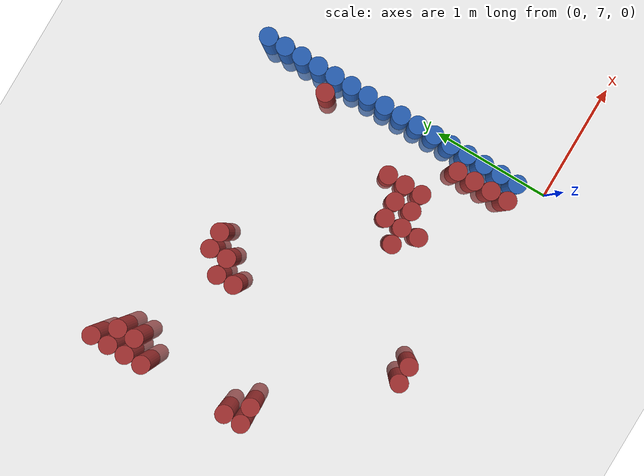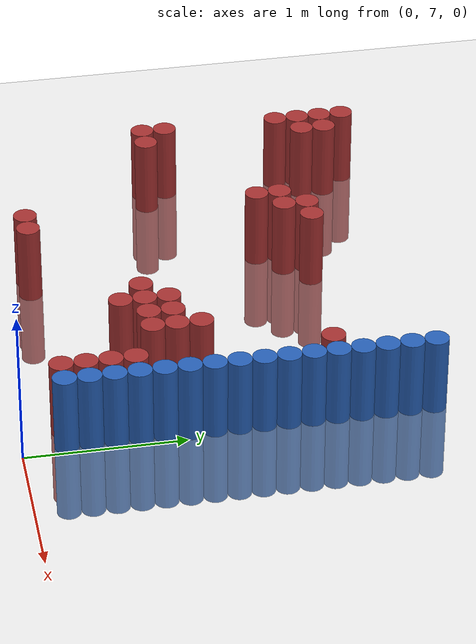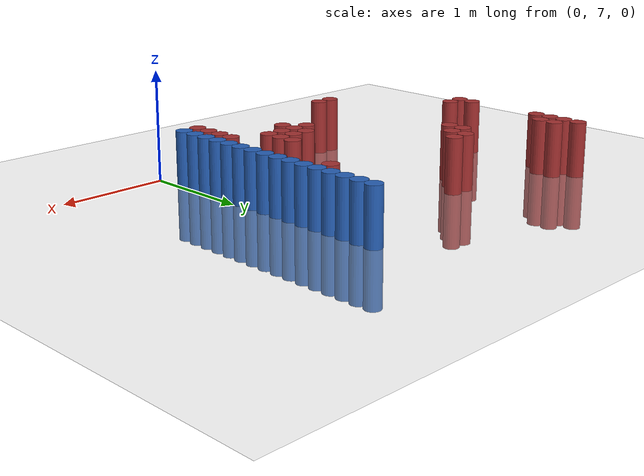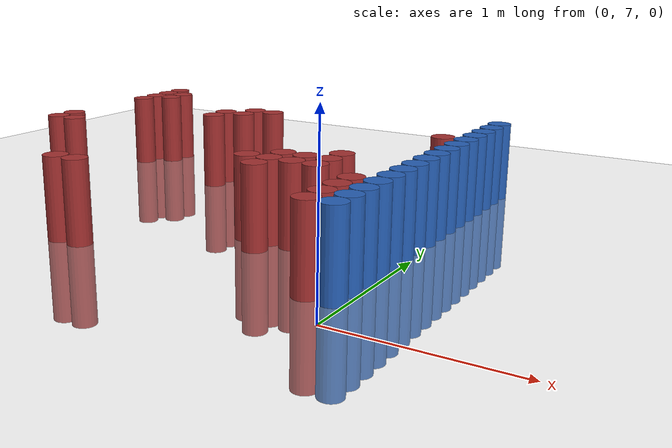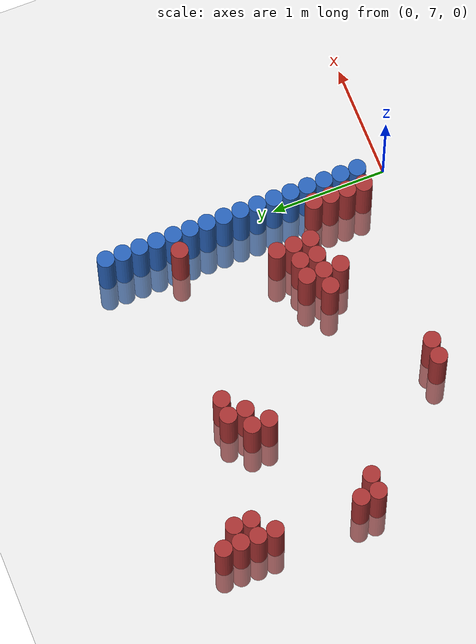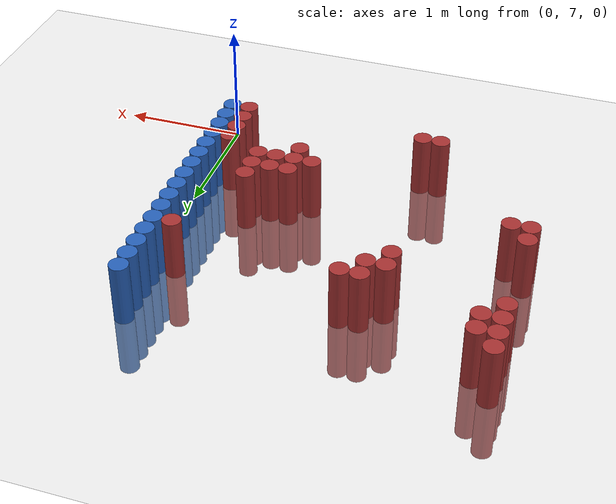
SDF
<sdf version="1.6">
 <world name="default">
  <model name="ground_plane">
   <static>1</static>
   <link name="link">
    <collision name="collision">
     <geometry><plane><normal>0 0 1</normal><size>100 100</size></plane></geometry>
     <surface><friction><ode><mu>100</mu><mu2>50</mu2></ode></friction></surface>
    </collision>
    <visual name="visual">
     <cast_shadows>0</cast_shadows>
     <geometry><plane><normal>0 0 1</normal><size>100 100</size></plane></geometry>
     <material>
      <script><uri>file://media/materials/scripts/gazebo.material</uri><name>Gazebo/Grey</name></script>
     </material>
    </visual>
   </link>
  </model>
  <model name="unit_cylinder_155">
   <static>1</static>
   <pose>-2.775000 8.175000 0.000000 0.000000 0.000000 0.000000</pose>
   <link name="link">
    <inertial>
     <mass>1</mass>
     <inertia><ixx>0.145833</ixx><ixy>0</ixy><ixz>0</ixz><iyy>0.145833</iyy><iyz>0</iyz><izz>0.125</izz></inertia>
    </inertial>
    <collision name="collision">
     <geometry><cylinder><radius>0.075000</radius><length>1</length></cylinder></geometry>
    </collision>
    <visual name="visual">
     <geometry><cylinder><radius>0.075000</radius><length>1</length></cylinder></geometry>
     <material>
      <ambient>0.648000 0.192000 0.192000 1</ambient>
      <diffuse>0.648000 0.192000 0.192000 1</diffuse>
     </material>
     <material>
      <script><name>Gazebo/Grey</name><uri>file://media/materials/scripts/gazebo.material</uri></script>
     </material>
    </visual>
   </link>
  </model>
  <model name="unit_cylinder_156">
   <static>1</static>
   <pose>-2.775000 8.325000 0.000000 0.000000 0.000000 0.000000</pose>
   <link name="link">
    <inertial>
     <mass>1</mass>
     <inertia><ixx>0.145833</ixx><ixy>0</ixy><ixz>0</ixz><iyy>0.145833</iyy><iyz>0</iyz><izz>0.125</izz></inertia>
    </inertial>
    <collision name="collision">
     <geometry><cylinder><radius>0.075000</radius><length>1</length></cylinder></geometry>
    </collision>
    <visual name="visual">
     <geometry><cylinder><radius>0.075000</radius><length>1</length></cylinder></geometry>
     <material>
      <ambient>0.648000 0.192000 0.192000 1</ambient>
      <diffuse>0.648000 0.192000 0.192000 1</diffuse>
     </material>
     <material>
      <script><name>Gazebo/Grey</name><uri>file://media/materials/scripts/gazebo.material</uri></script>
     </material>
    </visual>
   </link>
  </model>
  <model name="unit_cylinder_157">
   <static>1</static>
   <pose>-2.775000 9.075000 0.000000 0.000000 0.000000 0.000000</pose>
   <link name="link">
    <inertial>
     <mass>1</mass>
     <inertia><ixx>0.145833</ixx><ixy>0</ixy><ixz>0</ixz><iyy>0.145833</iyy><iyz>0</iyz><izz>0.125</izz></inertia>
    </inertial>
    <collision name="collision">
     <geometry><cylinder><radius>0.075000</radius><length>1</length></cylinder></geometry>
    </collision>
    <visual name="visual">
     <geometry><cylinder><radius>0.075000</radius><length>1</length></cylinder></geometry>
     <material>
      <ambient>0.648000 0.192000 0.192000 1</ambient>
      <diffuse>0.648000 0.192000 0.192000 1</diffuse>
     </material>
     <material>
      <script><name>Gazebo/Grey</name><uri>file://media/materials/scripts/gazebo.material</uri></script>
     </material>
    </visual>
   </link>
  </model>
  <model name="unit_cylinder_158">
   <static>1</static>
   <pose>-2.775000 9.225000 0.000000 0.000000 0.000000 0.000000</pose>
   <link name="link">
    <inertial>
     <mass>1</mass>
     <inertia><ixx>0.145833</ixx><ixy>0</ixy><ixz>0</ixz><iyy>0.145833</iyy><iyz>0</iyz><izz>0.125</izz></inertia>
    </inertial>
    <collision name="collision">
     <geometry><cylinder><radius>0.075000</radius><length>1</length></cylinder></geometry>
    </collision>
    <visual name="visual">
     <geometry><cylinder><radius>0.075000</radius><length>1</length></cylinder></geometry>
     <material>
      <ambient>0.648000 0.192000 0.192000 1</ambient>
      <diffuse>0.648000 0.192000 0.192000 1</diffuse>
     </material>
     <material>
      <script><name>Gazebo/Grey</name><uri>file://media/materials/scripts/gazebo.material</uri></script>
     </material>
    </visual>
   </link>
  </model>
  <model name="unit_cylinder_159">
   <static>1</static>
   <pose>-2.775000 9.375000 0.000000 0.000000 0.000000 0.000000</pose>
   <link name="link">
    <inertial>
     <mass>1</mass>
     <inertia><ixx>0.145833</ixx><ixy>0</ixy><ixz>0</ixz><iyy>0.145833</iyy><iyz>0</iyz><izz>0.125</izz></inertia>
    </inertial>
    <collision name="collision">
     <geometry><cylinder><radius>0.075000</radius><length>1</length></cylinder></geometry>
    </collision>
    <visual name="visual">
     <geometry><cylinder><radius>0.075000</radius><length>1</length></cylinder></geometry>
     <material>
      <ambient>0.648000 0.192000 0.192000 1</ambient>
      <diffuse>0.648000 0.192000 0.192000 1</diffuse>
     </material>
     <material>
      <script><name>Gazebo/Grey</name><uri>file://media/materials/scripts/gazebo.material</uri></script>
     </material>
    </visual>
   </link>
  </model>
  <model name="unit_cylinder_160">
   <static>1</static>
   <pose>-2.775000 9.525000 0.000000 0.000000 0.000000 0.000000</pose>
   <link name="link">
    <inertial>
     <mass>1</mass>
     <inertia><ixx>0.145833</ixx><ixy>0</ixy><ixz>0</ixz><iyy>0.145833</iyy><iyz>0</iyz><izz>0.125</izz></inertia>
    </inertial>
    <collision name="collision">
     <geometry><cylinder><radius>0.075000</radius><length>1</length></cylinder></geometry>
    </collision>
    <visual name="visual">
     <geometry><cylinder><radius>0.075000</radius><length>1</length></cylinder></geometry>
     <material>
      <ambient>0.648000 0.192000 0.192000 1</ambient>
      <diffuse>0.648000 0.192000 0.192000 1</diffuse>
     </material>
     <material>
      <script><name>Gazebo/Grey</name><uri>file://media/materials/scripts/gazebo.material</uri></script>
     </material>
    </visual>
   </link>
  </model>
  <model name="unit_cylinder_164">
   <static>1</static>
   <pose>-2.625000 8.175000 0.000000 0.000000 0.000000 0.000000</pose>
   <link name="link">
    <inertial>
     <mass>1</mass>
     <inertia><ixx>0.145833</ixx><ixy>0</ixy><ixz>0</ixz><iyy>0.145833</iyy><iyz>0</iyz><izz>0.125</izz></inertia>
    </inertial>
    <collision name="collision">
     <geometry><cylinder><radius>0.075000</radius><length>1</length></cylinder></geometry>
    </collision>
    <visual name="visual">
     <geometry><cylinder><radius>0.075000</radius><length>1</length></cylinder></geometry>
     <material>
      <ambient>0.648000 0.192000 0.192000 1</ambient>
      <diffuse>0.648000 0.192000 0.192000 1</diffuse>
     </material>
     <material>
      <script><name>Gazebo/Grey</name><uri>file://media/materials/scripts/gazebo.material</uri></script>
     </material>
    </visual>
   </link>
  </model>
  <model name="unit_cylinder_165">
   <static>1</static>
   <pose>-2.625000 9.225000 0.000000 0.000000 0.000000 0.000000</pose>
   <link name="link">
    <inertial>
     <mass>1</mass>
     <inertia><ixx>0.145833</ixx><ixy>0</ixy><ixz>0</ixz><iyy>0.145833</iyy><iyz>0</iyz><izz>0.125</izz></inertia>
    </inertial>
    <collision name="collision">
     <geometry><cylinder><radius>0.075000</radius><length>1</length></cylinder></geometry>
    </collision>
    <visual name="visual">
     <geometry><cylinder><radius>0.075000</radius><length>1</length></cylinder></geometry>
     <material>
      <ambient>0.648000 0.192000 0.192000 1</ambient>
      <diffuse>0.648000 0.192000 0.192000 1</diffuse>
     </material>
     <material>
      <script><name>Gazebo/Grey</name><uri>file://media/materials/scripts/gazebo.material</uri></script>
     </material>
    </visual>
   </link>
  </model>
  <model name="unit_cylinder_166">
   <static>1</static>
   <pose>-2.625000 9.375000 0.000000 0.000000 0.000000 0.000000</pose>
   <link name="link">
    <inertial>
     <mass>1</mass>
     <inertia><ixx>0.145833</ixx><ixy>0</ixy><ixz>0</ixz><iyy>0.145833</iyy><iyz>0</iyz><izz>0.125</izz></inertia>
    </inertial>
    <collision name="collision">
     <geometry><cylinder><radius>0.075000</radius><length>1</length></cylinder></geometry>
    </collision>
    <visual name="visual">
     <geometry><cylinder><radius>0.075000</radius><length>1</length></cylinder></geometry>
     <material>
      <ambient>0.648000 0.192000 0.192000 1</ambient>
      <diffuse>0.648000 0.192000 0.192000 1</diffuse>
     </material>
     <material>
      <script><name>Gazebo/Grey</name><uri>file://media/materials/scripts/gazebo.material</uri></script>
     </material>
    </visual>
   </link>
  </model>
  <model name="unit_cylinder_186">
   <static>1</static>
   <pose>-1.875000 7.275000 0.000000 0.000000 0.000000 0.000000</pose>
   <link name="link">
    <inertial>
     <mass>1</mass>
     <inertia><ixx>0.145833</ixx><ixy>0</ixy><ixz>0</ixz><iyy>0.145833</iyy><iyz>0</iyz><izz>0.125</izz></inertia>
    </inertial>
    <collision name="collision">
     <geometry><cylinder><radius>0.075000</radius><length>1</length></cylinder></geometry>
    </collision>
    <visual name="visual">
     <geometry><cylinder><radius>0.075000</radius><length>1</length></cylinder></geometry>
     <material>
      <ambient>0.648000 0.192000 0.192000 1</ambient>
      <diffuse>0.648000 0.192000 0.192000 1</diffuse>
     </material>
     <material>
      <script><name>Gazebo/Grey</name><uri>file://media/materials/scripts/gazebo.material</uri></script>
     </material>
    </visual>
   </link>
  </model>
  <model name="unit_cylinder_187">
   <static>1</static>
   <pose>-1.875000 8.775000 0.000000 0.000000 0.000000 0.000000</pose>
   <link name="link">
    <inertial>
     <mass>1</mass>
     <inertia><ixx>0.145833</ixx><ixy>0</ixy><ixz>0</ixz><iyy>0.145833</iyy><iyz>0</iyz><izz>0.125</izz></inertia>
    </inertial>
    <collision name="collision">
     <geometry><cylinder><radius>0.075000</radius><length>1</length></cylinder></geometry>
    </collision>
    <visual name="visual">
     <geometry><cylinder><radius>0.075000</radius><length>1</length></cylinder></geometry>
     <material>
      <ambient>0.648000 0.192000 0.192000 1</ambient>
      <diffuse>0.648000 0.192000 0.192000 1</diffuse>
     </material>
     <material>
      <script><name>Gazebo/Grey</name><uri>file://media/materials/scripts/gazebo.material</uri></script>
     </material>
    </visual>
   </link>
  </model>
  <model name="unit_cylinder_188">
   <static>1</static>
   <pose>-1.875000 8.925000 0.000000 0.000000 0.000000 0.000000</pose>
   <link name="link">
    <inertial>
     <mass>1</mass>
     <inertia><ixx>0.145833</ixx><ixy>0</ixy><ixz>0</ixz><iyy>0.145833</iyy><iyz>0</iyz><izz>0.125</izz></inertia>
    </inertial>
    <collision name="collision">
     <geometry><cylinder><radius>0.075000</radius><length>1</length></cylinder></geometry>
    </collision>
    <visual name="visual">
     <geometry><cylinder><radius>0.075000</radius><length>1</length></cylinder></geometry>
     <material>
      <ambient>0.648000 0.192000 0.192000 1</ambient>
      <diffuse>0.648000 0.192000 0.192000 1</diffuse>
     </material>
     <material>
      <script><name>Gazebo/Grey</name><uri>file://media/materials/scripts/gazebo.material</uri></script>
     </material>
    </visual>
   </link>
  </model>
  <model name="unit_cylinder_193">
   <static>1</static>
   <pose>-1.725000 7.275000 0.000000 0.000000 0.000000 0.000000</pose>
   <link name="link">
    <inertial>
     <mass>1</mass>
     <inertia><ixx>0.145833</ixx><ixy>0</ixy><ixz>0</ixz><iyy>0.145833</iyy><iyz>0</iyz><izz>0.125</izz></inertia>
    </inertial>
    <collision name="collision">
     <geometry><cylinder><radius>0.075000</radius><length>1</length></cylinder></geometry>
    </collision>
    <visual name="visual">
     <geometry><cylinder><radius>0.075000</radius><length>1</length></cylinder></geometry>
     <material>
      <ambient>0.648000 0.192000 0.192000 1</ambient>
      <diffuse>0.648000 0.192000 0.192000 1</diffuse>
     </material>
     <material>
      <script><name>Gazebo/Grey</name><uri>file://media/materials/scripts/gazebo.material</uri></script>
     </material>
    </visual>
   </link>
  </model>
  <model name="unit_cylinder_194">
   <static>1</static>
   <pose>-1.725000 8.925000 0.000000 0.000000 0.000000 0.000000</pose>
   <link name="link">
    <inertial>
     <mass>1</mass>
     <inertia><ixx>0.145833</ixx><ixy>0</ixy><ixz>0</ixz><iyy>0.145833</iyy><iyz>0</iyz><izz>0.125</izz></inertia>
    </inertial>
    <collision name="collision">
     <geometry><cylinder><radius>0.075000</radius><length>1</length></cylinder></geometry>
    </collision>
    <visual name="visual">
     <geometry><cylinder><radius>0.075000</radius><length>1</length></cylinder></geometry>
     <material>
      <ambient>0.648000 0.192000 0.192000 1</ambient>
      <diffuse>0.648000 0.192000 0.192000 1</diffuse>
     </material>
     <material>
      <script><name>Gazebo/Grey</name><uri>file://media/materials/scripts/gazebo.material</uri></script>
     </material>
    </visual>
   </link>
  </model>
  <model name="unit_cylinder_195">
   <static>1</static>
   <pose>-1.725000 9.075000 0.000000 0.000000 0.000000 0.000000</pose>
   <link name="link">
    <inertial>
     <mass>1</mass>
     <inertia><ixx>0.145833</ixx><ixy>0</ixy><ixz>0</ixz><iyy>0.145833</iyy><iyz>0</iyz><izz>0.125</izz></inertia>
    </inertial>
    <collision name="collision">
     <geometry><cylinder><radius>0.075000</radius><length>1</length></cylinder></geometry>
    </collision>
    <visual name="visual">
     <geometry><cylinder><radius>0.075000</radius><length>1</length></cylinder></geometry>
     <material>
      <ambient>0.648000 0.192000 0.192000 1</ambient>
      <diffuse>0.648000 0.192000 0.192000 1</diffuse>
     </material>
     <material>
      <script><name>Gazebo/Grey</name><uri>file://media/materials/scripts/gazebo.material</uri></script>
     </material>
    </visual>
   </link>
  </model>
  <model name="unit_cylinder_200">
   <static>1</static>
   <pose>-1.575000 9.075000 0.000000 0.000000 0.000000 0.000000</pose>
   <link name="link">
    <inertial>
     <mass>1</mass>
     <inertia><ixx>0.145833</ixx><ixy>0</ixy><ixz>0</ixz><iyy>0.145833</iyy><iyz>0</iyz><izz>0.125</izz></inertia>
    </inertial>
    <collision name="collision">
     <geometry><cylinder><radius>0.075000</radius><length>1</length></cylinder></geometry>
    </collision>
    <visual name="visual">
     <geometry><cylinder><radius>0.075000</radius><length>1</length></cylinder></geometry>
     <material>
      <ambient>0.648000 0.192000 0.192000 1</ambient>
      <diffuse>0.648000 0.192000 0.192000 1</diffuse>
     </material>
     <material>
      <script><name>Gazebo/Grey</name><uri>file://media/materials/scripts/gazebo.material</uri></script>
     </material>
    </visual>
   </link>
  </model>
  <model name="unit_cylinder_208">
   <static>1</static>
   <pose>-0.975000 7.875000 0.000000 0.000000 0.000000 0.000000</pose>
   <link name="link">
    <inertial>
     <mass>1</mass>
     <inertia><ixx>0.145833</ixx><ixy>0</ixy><ixz>0</ixz><iyy>0.145833</iyy><iyz>0</iyz><izz>0.125</izz></inertia>
    </inertial>
    <collision name="collision">
     <geometry><cylinder><radius>0.075000</radius><length>1</length></cylinder></geometry>
    </collision>
    <visual name="visual">
     <geometry><cylinder><radius>0.075000</radius><length>1</length></cylinder></geometry>
     <material>
      <ambient>0.648000 0.192000 0.192000 1</ambient>
      <diffuse>0.648000 0.192000 0.192000 1</diffuse>
     </material>
     <material>
      <script><name>Gazebo/Grey</name><uri>file://media/materials/scripts/gazebo.material</uri></script>
     </material>
    </visual>
   </link>
  </model>
  <model name="unit_cylinder_209">
   <static>1</static>
   <pose>-0.825000 7.725000 0.000000 0.000000 0.000000 0.000000</pose>
   <link name="link">
    <inertial>
     <mass>1</mass>
     <inertia><ixx>0.145833</ixx><ixy>0</ixy><ixz>0</ixz><iyy>0.145833</iyy><iyz>0</iyz><izz>0.125</izz></inertia>
    </inertial>
    <collision name="collision">
     <geometry><cylinder><radius>0.075000</radius><length>1</length></cylinder></geometry>
    </collision>
    <visual name="visual">
     <geometry><cylinder><radius>0.075000</radius><length>1</length></cylinder></geometry>
     <material>
      <ambient>0.648000 0.192000 0.192000 1</ambient>
      <diffuse>0.648000 0.192000 0.192000 1</diffuse>
     </material>
     <material>
      <script><name>Gazebo/Grey</name><uri>file://media/materials/scripts/gazebo.material</uri></script>
     </material>
    </visual>
   </link>
  </model>
  <model name="unit_cylinder_210">
   <static>1</static>
   <pose>-0.825000 7.875000 0.000000 0.000000 0.000000 0.000000</pose>
   <link name="link">
    <inertial>
     <mass>1</mass>
     <inertia><ixx>0.145833</ixx><ixy>0</ixy><ixz>0</ixz><iyy>0.145833</iyy><iyz>0</iyz><izz>0.125</izz></inertia>
    </inertial>
    <collision name="collision">
     <geometry><cylinder><radius>0.075000</radius><length>1</length></cylinder></geometry>
    </collision>
    <visual name="visual">
     <geometry><cylinder><radius>0.075000</radius><length>1</length></cylinder></geometry>
     <material>
      <ambient>0.648000 0.192000 0.192000 1</ambient>
      <diffuse>0.648000 0.192000 0.192000 1</diffuse>
     </material>
     <material>
      <script><name>Gazebo/Grey</name><uri>file://media/materials/scripts/gazebo.material</uri></script>
     </material>
    </visual>
   </link>
  </model>
  <model name="unit_cylinder_211">
   <static>1</static>
   <pose>-0.825000 8.025000 0.000000 0.000000 0.000000 0.000000</pose>
   <link name="link">
    <inertial>
     <mass>1</mass>
     <inertia><ixx>0.145833</ixx><ixy>0</ixy><ixz>0</ixz><iyy>0.145833</iyy><iyz>0</iyz><izz>0.125</izz></inertia>
    </inertial>
    <collision name="collision">
     <geometry><cylinder><radius>0.075000</radius><length>1</length></cylinder></geometry>
    </collision>
    <visual name="visual">
     <geometry><cylinder><radius>0.075000</radius><length>1</length></cylinder></geometry>
     <material>
      <ambient>0.648000 0.192000 0.192000 1</ambient>
      <diffuse>0.648000 0.192000 0.192000 1</diffuse>
     </material>
     <material>
      <script><name>Gazebo/Grey</name><uri>file://media/materials/scripts/gazebo.material</uri></script>
     </material>
    </visual>
   </link>
  </model>
  <model name="unit_cylinder_214">
   <static>1</static>
   <pose>-0.675000 7.875000 0.000000 0.000000 0.000000 0.000000</pose>
   <link name="link">
    <inertial>
     <mass>1</mass>
     <inertia><ixx>0.145833</ixx><ixy>0</ixy><ixz>0</ixz><iyy>0.145833</iyy><iyz>0</iyz><izz>0.125</izz></inertia>
    </inertial>
    <collision name="collision">
     <geometry><cylinder><radius>0.075000</radius><length>1</length></cylinder></geometry>
    </collision>
    <visual name="visual">
     <geometry><cylinder><radius>0.075000</radius><length>1</length></cylinder></geometry>
     <material>
      <ambient>0.648000 0.192000 0.192000 1</ambient>
      <diffuse>0.648000 0.192000 0.192000 1</diffuse>
     </material>
     <material>
      <script><name>Gazebo/Grey</name><uri>file://media/materials/scripts/gazebo.material</uri></script>
     </material>
    </visual>
   </link>
  </model>
  <model name="unit_cylinder_215">
   <static>1</static>
   <pose>-0.675000 8.025000 0.000000 0.000000 0.000000 0.000000</pose>
   <link name="link">
    <inertial>
     <mass>1</mass>
     <inertia><ixx>0.145833</ixx><ixy>0</ixy><ixz>0</ixz><iyy>0.145833</iyy><iyz>0</iyz><izz>0.125</izz></inertia>
    </inertial>
    <collision name="collision">
     <geometry><cylinder><radius>0.075000</radius><length>1</length></cylinder></geometry>
    </collision>
    <visual name="visual">
     <geometry><cylinder><radius>0.075000</radius><length>1</length></cylinder></geometry>
     <material>
      <ambient>0.648000 0.192000 0.192000 1</ambient>
      <diffuse>0.648000 0.192000 0.192000 1</diffuse>
     </material>
     <material>
      <script><name>Gazebo/Grey</name><uri>file://media/materials/scripts/gazebo.material</uri></script>
     </material>
    </visual>
   </link>
  </model>
  <model name="unit_cylinder_219">
   <static>1</static>
   <pose>-0.525000 7.875000 0.000000 0.000000 0.000000 0.000000</pose>
   <link name="link">
    <inertial>
     <mass>1</mass>
     <inertia><ixx>0.145833</ixx><ixy>0</ixy><ixz>0</ixz><iyy>0.145833</iyy><iyz>0</iyz><izz>0.125</izz></inertia>
    </inertial>
    <collision name="collision">
     <geometry><cylinder><radius>0.075000</radius><length>1</length></cylinder></geometry>
    </collision>
    <visual name="visual">
     <geometry><cylinder><radius>0.075000</radius><length>1</length></cylinder></geometry>
     <material>
      <ambient>0.648000 0.192000 0.192000 1</ambient>
      <diffuse>0.648000 0.192000 0.192000 1</diffuse>
     </material>
     <material>
      <script><name>Gazebo/Grey</name><uri>file://media/materials/scripts/gazebo.material</uri></script>
     </material>
    </visual>
   </link>
  </model>
  <model name="unit_cylinder_220">
   <static>1</static>
   <pose>-0.525000 8.025000 0.000000 0.000000 0.000000 0.000000</pose>
   <link name="link">
    <inertial>
     <mass>1</mass>
     <inertia><ixx>0.145833</ixx><ixy>0</ixy><ixz>0</ixz><iyy>0.145833</iyy><iyz>0</iyz><izz>0.125</izz></inertia>
    </inertial>
    <collision name="collision">
     <geometry><cylinder><radius>0.075000</radius><length>1</length></cylinder></geometry>
    </collision>
    <visual name="visual">
     <geometry><cylinder><radius>0.075000</radius><length>1</length></cylinder></geometry>
     <material>
      <ambient>0.648000 0.192000 0.192000 1</ambient>
      <diffuse>0.648000 0.192000 0.192000 1</diffuse>
     </material>
     <material>
      <script><name>Gazebo/Grey</name><uri>file://media/materials/scripts/gazebo.material</uri></script>
     </material>
    </visual>
   </link>
  </model>
  <model name="unit_cylinder_221">
   <static>1</static>
   <pose>-0.525000 8.175000 0.000000 0.000000 0.000000 0.000000</pose>
   <link name="link">
    <inertial>
     <mass>1</mass>
     <inertia><ixx>0.145833</ixx><ixy>0</ixy><ixz>0</ixz><iyy>0.145833</iyy><iyz>0</iyz><izz>0.125</izz></inertia>
    </inertial>
    <collision name="collision">
     <geometry><cylinder><radius>0.075000</radius><length>1</length></cylinder></geometry>
    </collision>
    <visual name="visual">
     <geometry><cylinder><radius>0.075000</radius><length>1</length></cylinder></geometry>
     <material>
      <ambient>0.648000 0.192000 0.192000 1</ambient>
      <diffuse>0.648000 0.192000 0.192000 1</diffuse>
     </material>
     <material>
      <script><name>Gazebo/Grey</name><uri>file://media/materials/scripts/gazebo.material</uri></script>
     </material>
    </visual>
   </link>
  </model>
  <model name="unit_cylinder_240">
   <static>1</static>
   <pose>-0.225000 7.275000 0.000000 0.000000 0.000000 0.000000</pose>
   <link name="link">
    <inertial>
     <mass>1</mass>
     <inertia><ixx>0.145833</ixx><ixy>0</ixy><ixz>0</ixz><iyy>0.145833</iyy><iyz>0</iyz><izz>0.125</izz></inertia>
    </inertial>
    <collision name="collision">
     <geometry><cylinder><radius>0.075000</radius><length>1</length></cylinder></geometry>
    </collision>
    <visual name="visual">
     <geometry><cylinder><radius>0.075000</radius><length>1</length></cylinder></geometry>
     <material>
      <ambient>0.648000 0.192000 0.192000 1</ambient>
      <diffuse>0.648000 0.192000 0.192000 1</diffuse>
     </material>
     <material>
      <script><name>Gazebo/Grey</name><uri>file://media/materials/scripts/gazebo.material</uri></script>
     </material>
    </visual>
   </link>
  </model>
  <model name="unit_cylinder_241">
   <static>1</static>
   <pose>-0.225000 7.425000 0.000000 0.000000 0.000000 0.000000</pose>
   <link name="link">
    <inertial>
     <mass>1</mass>
     <inertia><ixx>0.145833</ixx><ixy>0</ixy><ixz>0</ixz><iyy>0.145833</iyy><iyz>0</iyz><izz>0.125</izz></inertia>
    </inertial>
    <collision name="collision">
     <geometry><cylinder><radius>0.075000</radius><length>1</length></cylinder></geometry>
    </collision>
    <visual name="visual">
     <geometry><cylinder><radius>0.075000</radius><length>1</length></cylinder></geometry>
     <material>
      <ambient>0.648000 0.192000 0.192000 1</ambient>
      <diffuse>0.648000 0.192000 0.192000 1</diffuse>
     </material>
     <material>
      <script><name>Gazebo/Grey</name><uri>file://media/materials/scripts/gazebo.material</uri></script>
     </material>
    </visual>
   </link>
  </model>
  <model name="unit_cylinder_242">
   <static>1</static>
   <pose>-0.225000 7.575000 0.000000 0.000000 0.000000 0.000000</pose>
   <link name="link">
    <inertial>
     <mass>1</mass>
     <inertia><ixx>0.145833</ixx><ixy>0</ixy><ixz>0</ixz><iyy>0.145833</iyy><iyz>0</iyz><izz>0.125</izz></inertia>
    </inertial>
    <collision name="collision">
     <geometry><cylinder><radius>0.075000</radius><length>1</length></cylinder></geometry>
    </collision>
    <visual name="visual">
     <geometry><cylinder><radius>0.075000</radius><length>1</length></cylinder></geometry>
     <material>
      <ambient>0.648000 0.192000 0.192000 1</ambient>
      <diffuse>0.648000 0.192000 0.192000 1</diffuse>
     </material>
     <material>
      <script><name>Gazebo/Grey</name><uri>file://media/materials/scripts/gazebo.material</uri></script>
     </material>
    </visual>
   </link>
  </model>
  <model name="unit_cylinder_243">
   <static>1</static>
   <pose>-0.225000 7.725000 0.000000 0.000000 0.000000 0.000000</pose>
   <link name="link">
    <inertial>
     <mass>1</mass>
     <inertia><ixx>0.145833</ixx><ixy>0</ixy><ixz>0</ixz><iyy>0.145833</iyy><iyz>0</iyz><izz>0.125</izz></inertia>
    </inertial>
    <collision name="collision">
     <geometry><cylinder><radius>0.075000</radius><length>1</length></cylinder></geometry>
    </collision>
    <visual name="visual">
     <geometry><cylinder><radius>0.075000</radius><length>1</length></cylinder></geometry>
     <material>
      <ambient>0.648000 0.192000 0.192000 1</ambient>
      <diffuse>0.648000 0.192000 0.192000 1</diffuse>
     </material>
     <material>
      <script><name>Gazebo/Grey</name><uri>file://media/materials/scripts/gazebo.material</uri></script>
     </material>
    </visual>
   </link>
  </model>
  <model name="unit_cylinder_244">
   <static>1</static>
   <pose>-0.225000 8.925000 0.000000 0.000000 0.000000 0.000000</pose>
   <link name="link">
    <inertial>
     <mass>1</mass>
     <inertia><ixx>0.145833</ixx><ixy>0</ixy><ixz>0</ixz><iyy>0.145833</iyy><iyz>0</iyz><izz>0.125</izz></inertia>
    </inertial>
    <collision name="collision">
     <geometry><cylinder><radius>0.075000</radius><length>1</length></cylinder></geometry>
    </collision>
    <visual name="visual">
     <geometry><cylinder><radius>0.075000</radius><length>1</length></cylinder></geometry>
     <material>
      <ambient>0.648000 0.192000 0.192000 1</ambient>
      <diffuse>0.648000 0.192000 0.192000 1</diffuse>
     </material>
     <material>
      <script><name>Gazebo/Grey</name><uri>file://media/materials/scripts/gazebo.material</uri></script>
     </material>
    </visual>
   </link>
  </model>
  <model name="unit_cylinder_259">
   <static>1</static>
   <pose>-0.075000 7.275000 0.000000 0.000000 0.000000 0.000000</pose>
   <link name="link">
    <inertial>
     <mass>1</mass>
     <inertia><ixx>0.145833</ixx><ixy>0</ixy><ixz>0</ixz><iyy>0.145833</iyy><iyz>0</iyz><izz>0.125</izz></inertia>
    </inertial>
    <collision name="collision">
     <geometry><cylinder><radius>0.075000</radius><length>1</length></cylinder></geometry>
    </collision>
    <visual name="visual">
     <geometry><cylinder><radius>0.075000</radius><length>1</length></cylinder></geometry>
     <material>
      <ambient>0.152000 0.379000 0.720000 1</ambient>
      <diffuse>0.152000 0.379000 0.720000 1</diffuse>
     </material>
     <material>
      <script><name>Gazebo/Grey</name><uri>file://media/materials/scripts/gazebo.material</uri></script>
     </material>
    </visual>
   </link>
  </model>
  <model name="unit_cylinder_260">
   <static>1</static>
   <pose>-0.075000 7.425000 0.000000 0.000000 0.000000 0.000000</pose>
   <link name="link">
    <inertial>
     <mass>1</mass>
     <inertia><ixx>0.145833</ixx><ixy>0</ixy><ixz>0</ixz><iyy>0.145833</iyy><iyz>0</iyz><izz>0.125</izz></inertia>
    </inertial>
    <collision name="collision">
     <geometry><cylinder><radius>0.075000</radius><length>1</length></cylinder></geometry>
    </collision>
    <visual name="visual">
     <geometry><cylinder><radius>0.075000</radius><length>1</length></cylinder></geometry>
     <material>
      <ambient>0.152000 0.379000 0.720000 1</ambient>
      <diffuse>0.152000 0.379000 0.720000 1</diffuse>
     </material>
     <material>
      <script><name>Gazebo/Grey</name><uri>file://media/materials/scripts/gazebo.material</uri></script>
     </material>
    </visual>
   </link>
  </model>
  <model name="unit_cylinder_261">
   <static>1</static>
   <pose>-0.075000 7.575000 0.000000 0.000000 0.000000 0.000000</pose>
   <link name="link">
    <inertial>
     <mass>1</mass>
     <inertia><ixx>0.145833</ixx><ixy>0</ixy><ixz>0</ixz><iyy>0.145833</iyy><iyz>0</iyz><izz>0.125</izz></inertia>
    </inertial>
    <collision name="collision">
     <geometry><cylinder><radius>0.075000</radius><length>1</length></cylinder></geometry>
    </collision>
    <visual name="visual">
     <geometry><cylinder><radius>0.075000</radius><length>1</length></cylinder></geometry>
     <material>
      <ambient>0.152000 0.379000 0.720000 1</ambient>
      <diffuse>0.152000 0.379000 0.720000 1</diffuse>
     </material>
     <material>
      <script><name>Gazebo/Grey</name><uri>file://media/materials/scripts/gazebo.material</uri></script>
     </material>
    </visual>
   </link>
  </model>
  <model name="unit_cylinder_262">
   <static>1</static>
   <pose>-0.075000 7.725000 0.000000 0.000000 0.000000 0.000000</pose>
   <link name="link">
    <inertial>
     <mass>1</mass>
     <inertia><ixx>0.145833</ixx><ixy>0</ixy><ixz>0</ixz><iyy>0.145833</iyy><iyz>0</iyz><izz>0.125</izz></inertia>
    </inertial>
    <collision name="collision">
     <geometry><cylinder><radius>0.075000</radius><length>1</length></cylinder></geometry>
    </collision>
    <visual name="visual">
     <geometry><cylinder><radius>0.075000</radius><length>1</length></cylinder></geometry>
     <material>
      <ambient>0.152000 0.379000 0.720000 1</ambient>
      <diffuse>0.152000 0.379000 0.720000 1</diffuse>
     </material>
     <material>
      <script><name>Gazebo/Grey</name><uri>file://media/materials/scripts/gazebo.material</uri></script>
     </material>
    </visual>
   </link>
  </model>
  <model name="unit_cylinder_263">
   <static>1</static>
   <pose>-0.075000 7.875000 0.000000 0.000000 0.000000 0.000000</pose>
   <link name="link">
    <inertial>
     <mass>1</mass>
     <inertia><ixx>0.145833</ixx><ixy>0</ixy><ixz>0</ixz><iyy>0.145833</iyy><iyz>0</iyz><izz>0.125</izz></inertia>
    </inertial>
    <collision name="collision">
     <geometry><cylinder><radius>0.075000</radius><length>1</length></cylinder></geometry>
    </collision>
    <visual name="visual">
     <geometry><cylinder><radius>0.075000</radius><length>1</length></cylinder></geometry>
     <material>
      <ambient>0.152000 0.379000 0.720000 1</ambient>
      <diffuse>0.152000 0.379000 0.720000 1</diffuse>
     </material>
     <material>
      <script><name>Gazebo/Grey</name><uri>file://media/materials/scripts/gazebo.material</uri></script>
     </material>
    </visual>
   </link>
  </model>
  <model name="unit_cylinder_264">
   <static>1</static>
   <pose>-0.075000 8.025000 0.000000 0.000000 0.000000 0.000000</pose>
   <link name="link">
    <inertial>
     <mass>1</mass>
     <inertia><ixx>0.145833</ixx><ixy>0</ixy><ixz>0</ixz><iyy>0.145833</iyy><iyz>0</iyz><izz>0.125</izz></inertia>
    </inertial>
    <collision name="collision">
     <geometry><cylinder><radius>0.075000</radius><length>1</length></cylinder></geometry>
    </collision>
    <visual name="visual">
     <geometry><cylinder><radius>0.075000</radius><length>1</length></cylinder></geometry>
     <material>
      <ambient>0.152000 0.379000 0.720000 1</ambient>
      <diffuse>0.152000 0.379000 0.720000 1</diffuse>
     </material>
     <material>
      <script><name>Gazebo/Grey</name><uri>file://media/materials/scripts/gazebo.material</uri></script>
     </material>
    </visual>
   </link>
  </model>
  <model name="unit_cylinder_265">
   <static>1</static>
   <pose>-0.075000 8.175000 0.000000 0.000000 0.000000 0.000000</pose>
   <link name="link">
    <inertial>
     <mass>1</mass>
     <inertia><ixx>0.145833</ixx><ixy>0</ixy><ixz>0</ixz><iyy>0.145833</iyy><iyz>0</iyz><izz>0.125</izz></inertia>
    </inertial>
    <collision name="collision">
     <geometry><cylinder><radius>0.075000</radius><length>1</length></cylinder></geometry>
    </collision>
    <visual name="visual">
     <geometry><cylinder><radius>0.075000</radius><length>1</length></cylinder></geometry>
     <material>
      <ambient>0.152000 0.379000 0.720000 1</ambient>
      <diffuse>0.152000 0.379000 0.720000 1</diffuse>
     </material>
     <material>
      <script><name>Gazebo/Grey</name><uri>file://media/materials/scripts/gazebo.material</uri></script>
     </material>
    </visual>
   </link>
  </model>
  <model name="unit_cylinder_266">
   <static>1</static>
   <pose>-0.075000 8.325000 0.000000 0.000000 0.000000 0.000000</pose>
   <link name="link">
    <inertial>
     <mass>1</mass>
     <inertia><ixx>0.145833</ixx><ixy>0</ixy><ixz>0</ixz><iyy>0.145833</iyy><iyz>0</iyz><izz>0.125</izz></inertia>
    </inertial>
    <collision name="collision">
     <geometry><cylinder><radius>0.075000</radius><length>1</length></cylinder></geometry>
    </collision>
    <visual name="visual">
     <geometry><cylinder><radius>0.075000</radius><length>1</length></cylinder></geometry>
     <material>
      <ambient>0.152000 0.379000 0.720000 1</ambient>
      <diffuse>0.152000 0.379000 0.720000 1</diffuse>
     </material>
     <material>
      <script><name>Gazebo/Grey</name><uri>file://media/materials/scripts/gazebo.material</uri></script>
     </material>
    </visual>
   </link>
  </model>
  <model name="unit_cylinder_267">
   <static>1</static>
   <pose>-0.075000 8.475000 0.000000 0.000000 0.000000 0.000000</pose>
   <link name="link">
    <inertial>
     <mass>1</mass>
     <inertia><ixx>0.145833</ixx><ixy>0</ixy><ixz>0</ixz><iyy>0.145833</iyy><iyz>0</iyz><izz>0.125</izz></inertia>
    </inertial>
    <collision name="collision">
     <geometry><cylinder><radius>0.075000</radius><length>1</length></cylinder></geometry>
    </collision>
    <visual name="visual">
     <geometry><cylinder><radius>0.075000</radius><length>1</length></cylinder></geometry>
     <material>
      <ambient>0.152000 0.379000 0.720000 1</ambient>
      <diffuse>0.152000 0.379000 0.720000 1</diffuse>
     </material>
     <material>
      <script><name>Gazebo/Grey</name><uri>file://media/materials/scripts/gazebo.material</uri></script>
     </material>
    </visual>
   </link>
  </model>
  <model name="unit_cylinder_268">
   <static>1</static>
   <pose>-0.075000 8.625000 0.000000 0.000000 0.000000 0.000000</pose>
   <link name="link">
    <inertial>
     <mass>1</mass>
     <inertia><ixx>0.145833</ixx><ixy>0</ixy><ixz>0</ixz><iyy>0.145833</iyy><iyz>0</iyz><izz>0.125</izz></inertia>
    </inertial>
    <collision name="collision">
     <geometry><cylinder><radius>0.075000</radius><length>1</length></cylinder></geometry>
    </collision>
    <visual name="visual">
     <geometry><cylinder><radius>0.075000</radius><length>1</length></cylinder></geometry>
     <material>
      <ambient>0.152000 0.379000 0.720000 1</ambient>
      <diffuse>0.152000 0.379000 0.720000 1</diffuse>
     </material>
     <material>
      <script><name>Gazebo/Grey</name><uri>file://media/materials/scripts/gazebo.material</uri></script>
     </material>
    </visual>
   </link>
  </model>
  <model name="unit_cylinder_269">
   <static>1</static>
   <pose>-0.075000 8.775000 0.000000 0.000000 0.000000 0.000000</pose>
   <link name="link">
    <inertial>
     <mass>1</mass>
     <inertia><ixx>0.145833</ixx><ixy>0</ixy><ixz>0</ixz><iyy>0.145833</iyy><iyz>0</iyz><izz>0.125</izz></inertia>
    </inertial>
    <collision name="collision">
     <geometry><cylinder><radius>0.075000</radius><length>1</length></cylinder></geometry>
    </collision>
    <visual name="visual">
     <geometry><cylinder><radius>0.075000</radius><length>1</length></cylinder></geometry>
     <material>
      <ambient>0.152000 0.379000 0.720000 1</ambient>
      <diffuse>0.152000 0.379000 0.720000 1</diffuse>
     </material>
     <material>
      <script><name>Gazebo/Grey</name><uri>file://media/materials/scripts/gazebo.material</uri></script>
     </material>
    </visual>
   </link>
  </model>
  <model name="unit_cylinder_270">
   <static>1</static>
   <pose>-0.075000 8.925000 0.000000 0.000000 0.000000 0.000000</pose>
   <link name="link">
    <inertial>
     <mass>1</mass>
     <inertia><ixx>0.145833</ixx><ixy>0</ixy><ixz>0</ixz><iyy>0.145833</iyy><iyz>0</iyz><izz>0.125</izz></inertia>
    </inertial>
    <collision name="collision">
     <geometry><cylinder><radius>0.075000</radius><length>1</length></cylinder></geometry>
    </collision>
    <visual name="visual">
     <geometry><cylinder><radius>0.075000</radius><length>1</length></cylinder></geometry>
     <material>
      <ambient>0.152000 0.379000 0.720000 1</ambient>
      <diffuse>0.152000 0.379000 0.720000 1</diffuse>
     </material>
     <material>
      <script><name>Gazebo/Grey</name><uri>file://media/materials/scripts/gazebo.material</uri></script>
     </material>
    </visual>
   </link>
  </model>
  <model name="unit_cylinder_271">
   <static>1</static>
   <pose>-0.075000 9.075000 0.000000 0.000000 0.000000 0.000000</pose>
   <link name="link">
    <inertial>
     <mass>1</mass>
     <inertia><ixx>0.145833</ixx><ixy>0</ixy><ixz>0</ixz><iyy>0.145833</iyy><iyz>0</iyz><izz>0.125</izz></inertia>
    </inertial>
    <collision name="collision">
     <geometry><cylinder><radius>0.075000</radius><length>1</length></cylinder></geometry>
    </collision>
    <visual name="visual">
     <geometry><cylinder><radius>0.075000</radius><length>1</length></cylinder></geometry>
     <material>
      <ambient>0.152000 0.379000 0.720000 1</ambient>
      <diffuse>0.152000 0.379000 0.720000 1</diffuse>
     </material>
     <material>
      <script><name>Gazebo/Grey</name><uri>file://media/materials/scripts/gazebo.material</uri></script>
     </material>
    </visual>
   </link>
  </model>
  <model name="unit_cylinder_272">
   <static>1</static>
   <pose>-0.075000 9.225000 0.000000 0.000000 0.000000 0.000000</pose>
   <link name="link">
    <inertial>
     <mass>1</mass>
     <inertia><ixx>0.145833</ixx><ixy>0</ixy><ixz>0</ixz><iyy>0.145833</iyy><iyz>0</iyz><izz>0.125</izz></inertia>
    </inertial>
    <collision name="collision">
     <geometry><cylinder><radius>0.075000</radius><length>1</length></cylinder></geometry>
    </collision>
    <visual name="visual">
     <geometry><cylinder><radius>0.075000</radius><length>1</length></cylinder></geometry>
     <material>
      <ambient>0.152000 0.379000 0.720000 1</ambient>
      <diffuse>0.152000 0.379000 0.720000 1</diffuse>
     </material>
     <material>
      <script><name>Gazebo/Grey</name><uri>file://media/materials/scripts/gazebo.material</uri></script>
     </material>
    </visual>
   </link>
  </model>
  <model name="unit_cylinder_273">
   <static>1</static>
   <pose>-0.075000 9.375000 0.000000 0.000000 0.000000 0.000000</pose>
   <link name="link">
    <inertial>
     <mass>1</mass>
     <inertia><ixx>0.145833</ixx><ixy>0</ixy><ixz>0</ixz><iyy>0.145833</iyy><iyz>0</iyz><izz>0.125</izz></inertia>
    </inertial>
    <collision name="collision">
     <geometry><cylinder><radius>0.075000</radius><length>1</length></cylinder></geometry>
    </collision>
    <visual name="visual">
     <geometry><cylinder><radius>0.075000</radius><length>1</length></cylinder></geometry>
     <material>
      <ambient>0.152000 0.379000 0.720000 1</ambient>
      <diffuse>0.152000 0.379000 0.720000 1</diffuse>
     </material>
     <material>
      <script><name>Gazebo/Grey</name><uri>file://media/materials/scripts/gazebo.material</uri></script>
     </material>
    </visual>
   </link>
  </model>
  <model name="unit_cylinder_274">
   <static>1</static>
   <pose>-0.075000 9.525000 0.000000 0.000000 0.000000 0.000000</pose>
   <link name="link">
    <inertial>
     <mass>1</mass>
     <inertia><ixx>0.145833</ixx><ixy>0</ixy><ixz>0</ixz><iyy>0.145833</iyy><iyz>0</iyz><izz>0.125</izz></inertia>
    </inertial>
    <collision name="collision">
     <geometry><cylinder><radius>0.075000</radius><length>1</length></cylinder></geometry>
    </collision>
    <visual name="visual">
     <geometry><cylinder><radius>0.075000</radius><length>1</length></cylinder></geometry>
     <material>
      <ambient>0.152000 0.379000 0.720000 1</ambient>
      <diffuse>0.152000 0.379000 0.720000 1</diffuse>
     </material>
     <material>
      <script><name>Gazebo/Grey</name><uri>file://media/materials/scripts/gazebo.material</uri></script>
     </material>
    </visual>
   </link>
  </model>
 </world>
</sdf>
